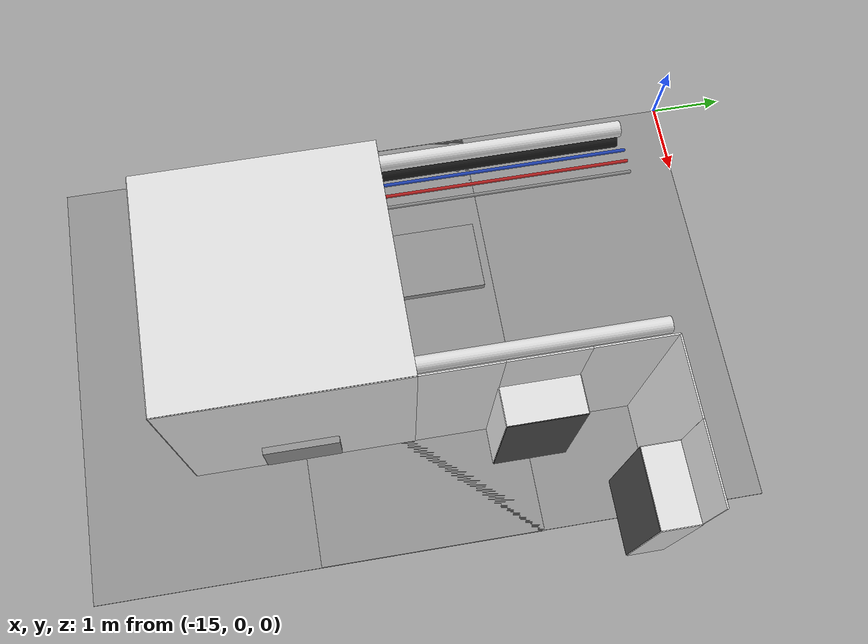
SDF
<sdf version="1.6">
 <world name="default">
  <model name="wall_left_front_left_-3_0_0_1">
   <static>1</static>
   <pose>-10.0 -1.5 1.5 0.0 0.0 3.14</pose>
   <link name="link">
    <collision name="collision"><geometry><box><size>1.0 0.02 3.0</size></box></geometry></collision>
    <visual name="visual">
     <material>
      <script><name>Gazebo/White</name><uri>file://media/materials/scripts/gazebo.material</uri></script>
     </material>
     <geometry><box><size>1.0 0.02 3.0</size></box></geometry>
    </visual>
   </link>
  </model>
  <model name="wall_left_front_up_-3_0_0_1">
   <static>1</static>
   <pose>-9.0 -1.5 2.5 0.0 0.0 3.14</pose>
   <link name="link">
    <collision name="collision"><geometry><box><size>1.0 0.02 1.0</size></box></geometry></collision>
    <visual name="visual">
     <material>
      <script><name>Gazebo/White</name><uri>file://media/materials/scripts/gazebo.material</uri></script>
     </material>
     <geometry><box><size>1.0 0.02 1.0</size></box></geometry>
    </visual>
   </link>
  </model>
  <model name="wall_left_inside_back_-3_0_0_1">
   <static>1</static>
   <pose>-9.0 -2.0 1.0 0.0 0.0 3.14</pose>
   <link name="link">
    <collision name="collision"><geometry><box><size>1 0.02 2</size></box></geometry></collision>
    <visual name="visual">
     <material>
      <script><name>Gazebo/DarkGrey</name><uri>file://media/materials/scripts/gazebo.material</uri></script>
     </material>
     <geometry><box><size>1 0.02 2</size></box></geometry>
    </visual>
   </link>
  </model>
  <model name="wall_left_inside_left_-3_0_0_1">
   <static>1</static>
   <pose>-9.5 -1.75 1.0 0.0 0.0 1.57</pose>
   <link name="link">
    <collision name="collision"><geometry><box><size>0.5 0.02 2</size></box></geometry></collision>
    <visual name="visual">
     <material>
      <script><name>Gazebo/White</name><uri>file://media/materials/scripts/gazebo.material</uri></script>
     </material>
     <geometry><box><size>0.5 0.02 2</size></box></geometry>
    </visual>
   </link>
  </model>
  <model name="wall_left_inside_right_-3_0_0_1">
   <static>1</static>
   <pose>-8.5 -1.75 1.0 0.0 0.0 1.57</pose>
   <link name="link">
    <collision name="collision"><geometry><box><size>0.5 0.02 2</size></box></geometry></collision>
    <visual name="visual">
     <material>
      <script><name>Gazebo/White</name><uri>file://media/materials/scripts/gazebo.material</uri></script>
     </material>
     <geometry><box><size>0.5 0.02 2</size></box></geometry>
    </visual>
   </link>
  </model>
  <model name="wall_left_inside_top_-3_0_0_1">
   <static>1</static>
   <pose>-9.0 -1.75 2.0 1.57 0.0 3.14</pose>
   <link name="link">
    <collision name="collision"><geometry><box><size>1 0.02 0.5</size></box></geometry></collision>
    <visual name="visual">
     <material>
      <script><name>Gazebo/White</name><uri>file://media/materials/scripts/gazebo.material</uri></script>
     </material>
     <geometry><box><size>1 0.02 0.5</size></box></geometry>
    </visual>
   </link>
  </model>
  <model name="ceiling_1_-4_-1_2_1">
   <pose>-12.0 -4.0 2.55 0.0 0.0 3.14</pose>
   <link name="link_1">
    <visual name="visual">
     <geometry><box><size>0.8 1 0.1</size></box></geometry>
     <material>
      <script><uri>file://media/materials/scripts/gazebo.material</uri><name>Gazebo/Grey</name></script>
     </material>
    </visual>
    <collision name="collision"><geometry><box><size>0.8 1 0.1</size></box></geometry></collision>
   </link>
   <static>1</static>
  </model>
  <model name="white_pipe_left_-4_-1_0_1">
   <static>1</static>
   <pose>-12.0 -3.0 2.76 0.0 0.0 3.14</pose>
   <link name="link_0">
    <visual name="visual">
     <pose>-1.3 0 0 1.57 0 0</pose>
     <geometry><cylinder><radius>0.1</radius><length>3.0</length></cylinder></geometry>
     <material>
      <script><uri>file://media/materials/scripts/gazebo.material</uri><name>Gazebo/White</name></script>
     </material>
    </visual>
    <collision name="collision">
     <pose>-1.3 0 0 1.57 0 0</pose>
     <geometry><cylinder><radius>0.1</radius><length>3.0</length></cylinder></geometry>
    </collision>
   </link>
  </model>
  <model name="white_pipe_right_-4_-1_0_1">
   <static>1</static>
   <pose>-12.0 -3.0 2.76 0.0 0.0 3.14</pose>
   <link name="link_0">
    <visual name="visual">
     <pose>1.3 0 0 1.57 0 0</pose>
     <geometry><cylinder><radius>0.1</radius><length>3.0</length></cylinder></geometry>
     <material>
      <script><uri>file://media/materials/scripts/gazebo.material</uri><name>Gazebo/White</name></script>
     </material>
    </visual>
    <collision name="collision">
     <pose>1.3 0 0 1.57 0 0</pose>
     <geometry><cylinder><radius>0.1</radius><length>3.0</length></cylinder></geometry>
    </collision>
   </link>
  </model>
  <model name="black_pipe_right_-4_-1_0_1">
   <static>1</static>
   <pose>-12.0 -3.0 2.76 0.0 0.0 3.14</pose>
   <link name="link_0">
    <visual name="visual">
     <pose>1.3 0 -0.25 1.57 0 0</pose>
     <geometry><cylinder><radius>0.1</radius><length>3.0</length></cylinder></geometry>
     <material>
      <script><uri>file://media/materials/scripts/gazebo.material</uri><name>Gazebo/Black</name></script>
     </material>
    </visual>
    <collision name="collision">
     <pose>1.3 0 -0.25 1.57 0 0</pose>
     <geometry><cylinder><radius>0.1</radius><length>3.0</length></cylinder></geometry>
    </collision>
   </link>
  </model>
  <model name="grey_pipe_right_-4_-1_0_1">
   <static>1</static>
   <pose>-12.0 -3.0 2.76 0.0 0.0 3.14</pose>
   <link name="link_0">
    <visual name="visual">
     <pose>0.7 0 0 1.57 0 0</pose>
     <geometry><cylinder><radius>0.02</radius><length>3.0</length></cylinder></geometry>
     <material>
      <script><uri>file://media/materials/scripts/gazebo.material</uri><name>Gazebo/Grey</name></script>
     </material>
    </visual>
    <collision name="collision">
     <pose>0.7 0 0 1.57 0 0</pose>
     <geometry><cylinder><radius>0.02</radius><length>3.0</length></cylinder></geometry>
    </collision>
   </link>
  </model>
  <model name="red_pipe_right_-4_-1_0_1">
   <static>1</static>
   <pose>-12.0 -3.0 2.76 0.0 0.0 3.14</pose>
   <link name="link_0">
    <visual name="visual">
     <pose>0.85 0 0 1.57 0 0</pose>
     <geometry><cylinder><radius>0.02</radius><length>3.0</length></cylinder></geometry>
     <material>
      <script><uri>file://media/materials/scripts/gazebo.material</uri><name>Gazebo/Red</name></script>
     </material>
    </visual>
    <collision name="collision">
     <pose>0.85 0 0 1.57 0 0</pose>
     <geometry><cylinder><radius>0.02</radius><length>3.0</length></cylinder></geometry>
    </collision>
   </link>
  </model>
  <model name="blue_pipe_right_-4_-1_0_1">
   <static>1</static>
   <pose>-12.0 -3.0 2.76 0.0 0.0 3.14</pose>
   <link name="link_0">
    <visual name="visual">
     <pose>1 0 0 1.57 0 0</pose>
     <geometry><cylinder><radius>0.02</radius><length>3.0</length></cylinder></geometry>
     <material>
      <script><uri>file://media/materials/scripts/gazebo.material</uri><name>Gazebo/Blue</name></script>
     </material>
    </visual>
    <collision name="collision">
     <pose>1 0 0 1.57 0 0</pose>
     <geometry><cylinder><radius>0.02</radius><length>3.0</length></cylinder></geometry>
    </collision>
   </link>
  </model>
  <model name="wall_left_front_left_-4_-1_0_1">
   <static>1</static>
   <pose>-10.5 -4.0 1.5 0.0 0.0 4.71</pose>
   <link name="link">
    <collision name="collision"><geometry><box><size>1.0 0.02 3.0</size></box></geometry></collision>
    <visual name="visual">
     <material>
      <script><name>Gazebo/White</name><uri>file://media/materials/scripts/gazebo.material</uri></script>
     </material>
     <geometry><box><size>1.0 0.02 3.0</size></box></geometry>
    </visual>
   </link>
  </model>
  <model name="wall_left_front_right_-4_-1_0_1">
   <static>1</static>
   <pose>-10.5 -2.0 1.5 0.0 0.0 4.71</pose>
   <link name="link">
    <collision name="collision"><geometry><box><size>1.0 0.02 3.0</size></box></geometry></collision>
    <visual name="visual">
     <material>
      <script><name>Gazebo/White</name><uri>file://media/materials/scripts/gazebo.material</uri></script>
     </material>
     <geometry><box><size>1.0 0.02 3.0</size></box></geometry>
    </visual>
   </link>
  </model>
  <model name="wall_left_front_up_-4_-1_0_1">
   <static>1</static>
   <pose>-10.5 -3.0 2.5 0.0 0.0 4.71</pose>
   <link name="link">
    <collision name="collision"><geometry><box><size>1.0 0.02 1.0</size></box></geometry></collision>
    <visual name="visual">
     <material>
      <script><name>Gazebo/White</name><uri>file://media/materials/scripts/gazebo.material</uri></script>
     </material>
     <geometry><box><size>1.0 0.02 1.0</size></box></geometry>
    </visual>
   </link>
  </model>
  <model name="wall_left_inside_back_-4_-1_0_1">
   <static>1</static>
   <pose>-10.0 -3.0 1.0 0.0 0.0 4.71</pose>
   <link name="link">
    <collision name="collision"><geometry><box><size>1 0.02 2</size></box></geometry></collision>
    <visual name="visual">
     <material>
      <script><name>Gazebo/DarkGrey</name><uri>file://media/materials/scripts/gazebo.material</uri></script>
     </material>
     <geometry><box><size>1 0.02 2</size></box></geometry>
    </visual>
   </link>
  </model>
  <model name="wall_left_inside_left_-4_-1_0_1">
   <static>1</static>
   <pose>-10.25 -3.5 1.0 0.0 0.0 3.14</pose>
   <link name="link">
    <collision name="collision"><geometry><box><size>0.5 0.02 2</size></box></geometry></collision>
    <visual name="visual">
     <material>
      <script><name>Gazebo/White</name><uri>file://media/materials/scripts/gazebo.material</uri></script>
     </material>
     <geometry><box><size>0.5 0.02 2</size></box></geometry>
    </visual>
   </link>
  </model>
  <model name="wall_left_inside_right_-4_-1_0_1">
   <static>1</static>
   <pose>-10.25 -2.5 1.0 0.0 0.0 3.14</pose>
   <link name="link">
    <collision name="collision"><geometry><box><size>0.5 0.02 2</size></box></geometry></collision>
    <visual name="visual">
     <material>
      <script><name>Gazebo/White</name><uri>file://media/materials/scripts/gazebo.material</uri></script>
     </material>
     <geometry><box><size>0.5 0.02 2</size></box></geometry>
    </visual>
   </link>
  </model>
  <model name="wall_left_inside_top_-4_-1_0_1">
   <static>1</static>
   <pose>-10.25 -3.0 2.0 1.57 0.0 4.71</pose>
   <link name="link">
    <collision name="collision"><geometry><box><size>1 0.02 0.5</size></box></geometry></collision>
    <visual name="visual">
     <material>
      <script><name>Gazebo/White</name><uri>file://media/materials/scripts/gazebo.material</uri></script>
     </material>
     <geometry><box><size>1 0.02 0.5</size></box></geometry>
    </visual>
   </link>
  </model>
  <model name="wall_bottom_-4_-1_0_1">
   <static>1</static>
   <pose>-12.0 -3.0 0.0 0.0 0.0 3.14</pose>
   <link name="link">
    <collision name="collision"><geometry><box><size>6.0 6.0 0.02</size></box></geometry></collision>
    <visual name="visual">
     <material>
      <script><name>Gazebo/Grey</name><uri>file://media/materials/scripts/gazebo.material</uri></script>
     </material>
     <geometry><box><size>6.0 6.0 0.02</size></box></geometry>
    </visual>
   </link>
  </model>
  <model name="wall_front_-4_-2_0_2">
   <static>1</static>
   <pose>-12.0 -7.5 1.5 0.0 0.0 3.14</pose>
   <link name="link">
    <collision name="collision"><geometry><box><size>3.0 0.02 3.0</size></box></geometry></collision>
    <visual name="visual">
     <material>
      <script><name>Gazebo/White</name><uri>file://media/materials/scripts/gazebo.material</uri></script>
     </material>
     <geometry><box><size>3.0 0.02 3.0</size></box></geometry>
    </visual>
   </link>
  </model>
  <model name="wall_left_-4_-2_0_2">
   <static>1</static>
   <pose>-10.5 -6.0 1.5 0.0 0.0 4.71</pose>
   <link name="link">
    <collision name="collision"><geometry><box><size>3.0 0.02 3.0</size></box></geometry></collision>
    <visual name="visual">
     <material>
      <script><name>Gazebo/White</name><uri>file://media/materials/scripts/gazebo.material</uri></script>
     </material>
     <geometry><box><size>3.0 0.02 3.0</size></box></geometry>
    </visual>
   </link>
  </model>
  <model name="wall_top_-4_-2_0_2">
   <static>1</static>
   <pose>-12.0 -6.0 3.0 1.57 0.0 3.14</pose>
   <link name="link">
    <collision name="collision"><geometry><box><size>3.0 0.02 3.0</size></box></geometry></collision>
    <visual name="visual">
     <material>
      <script><name>Gazebo/White</name><uri>file://media/materials/scripts/gazebo.material</uri></script>
     </material>
     <geometry><box><size>3.0 0.02 3.0</size></box></geometry>
    </visual>
   </link>
  </model>
  <model name="ceiling_1_-4_-2_0_2">
   <pose>-12.0 -5.0 2.55 0.0 0.0 3.14</pose>
   <link name="link_1">
    <visual name="visual">
     <geometry><box><size>0.8 1 0.1</size></box></geometry>
     <material>
      <script><uri>file://media/materials/scripts/gazebo.material</uri><name>Gazebo/Grey</name></script>
     </material>
    </visual>
    <collision name="collision"><geometry><box><size>0.8 1 0.1</size></box></geometry></collision>
   </link>
   <static>1</static>
  </model>
  <model name="white_pipe_left_-4_-2_0_2">
   <static>1</static>
   <pose>-12.0 -6.0 2.76 0.0 0.0 3.14</pose>
   <link name="link_0">
    <visual name="visual">
     <pose>-1.3 0 0 1.57 0 0</pose>
     <geometry><cylinder><radius>0.1</radius><length>3.0</length></cylinder></geometry>
     <material>
      <script><uri>file://media/materials/scripts/gazebo.material</uri><name>Gazebo/White</name></script>
     </material>
    </visual>
    <collision name="collision">
     <pose>-1.3 0 0 1.57 0 0</pose>
     <geometry><cylinder><radius>0.1</radius><length>3.0</length></cylinder></geometry>
    </collision>
   </link>
  </model>
  <model name="white_pipe_right_-4_-2_0_2">
   <static>1</static>
   <pose>-12.0 -6.0 2.76 0.0 0.0 3.14</pose>
   <link name="link_0">
    <visual name="visual">
     <pose>1.3 0 0 1.57 0 0</pose>
     <geometry><cylinder><radius>0.1</radius><length>3.0</length></cylinder></geometry>
     <material>
      <script><uri>file://media/materials/scripts/gazebo.material</uri><name>Gazebo/White</name></script>
     </material>
    </visual>
    <collision name="collision">
     <pose>1.3 0 0 1.57 0 0</pose>
     <geometry><cylinder><radius>0.1</radius><length>3.0</length></cylinder></geometry>
    </collision>
   </link>
  </model>
  <model name="black_pipe_right_-4_-2_0_2">
   <static>1</static>
   <pose>-12.0 -6.0 2.76 0.0 0.0 3.14</pose>
   <link name="link_0">
    <visual name="visual">
     <pose>1.3 0 -0.25 1.57 0 0</pose>
     <geometry><cylinder><radius>0.1</radius><length>3.0</length></cylinder></geometry>
     <material>
      <script><uri>file://media/materials/scripts/gazebo.material</uri><name>Gazebo/Black</name></script>
     </material>
    </visual>
    <collision name="collision">
     <pose>1.3 0 -0.25 1.57 0 0</pose>
     <geometry><cylinder><radius>0.1</radius><length>3.0</length></cylinder></geometry>
    </collision>
   </link>
  </model>
  <model name="grey_pipe_right_-4_-2_0_2">
   <static>1</static>
   <pose>-12.0 -6.0 2.76 0.0 0.0 3.14</pose>
   <link name="link_0">
    <visual name="visual">
     <pose>0.7 0 0 1.57 0 0</pose>
     <geometry><cylinder><radius>0.02</radius><length>3.0</length></cylinder></geometry>
     <material>
      <script><uri>file://media/materials/scripts/gazebo.material</uri><name>Gazebo/Grey</name></script>
     </material>
    </visual>
    <collision name="collision">
     <pose>0.7 0 0 1.57 0 0</pose>
     <geometry><cylinder><radius>0.02</radius><length>3.0</length></cylinder></geometry>
    </collision>
   </link>
  </model>
  <model name="red_pipe_right_-4_-2_0_2">
   <static>1</static>
   <pose>-12.0 -6.0 2.76 0.0 0.0 3.14</pose>
   <link name="link_0">
    <visual name="visual">
     <pose>0.85 0 0 1.57 0 0</pose>
     <geometry><cylinder><radius>0.02</radius><length>3.0</length></cylinder></geometry>
     <material>
      <script><uri>file://media/materials/scripts/gazebo.material</uri><name>Gazebo/Red</name></script>
     </material>
    </visual>
    <collision name="collision">
     <pose>0.85 0 0 1.57 0 0</pose>
     <geometry><cylinder><radius>0.02</radius><length>3.0</length></cylinder></geometry>
    </collision>
   </link>
  </model>
  <model name="blue_pipe_right_-4_-2_0_2">
   <static>1</static>
   <pose>-12.0 -6.0 2.76 0.0 0.0 3.14</pose>
   <link name="link_0">
    <visual name="visual">
     <pose>1 0 0 1.57 0 0</pose>
     <geometry><cylinder><radius>0.02</radius><length>3.0</length></cylinder></geometry>
     <material>
      <script><uri>file://media/materials/scripts/gazebo.material</uri><name>Gazebo/Blue</name></script>
     </material>
    </visual>
    <collision name="collision">
     <pose>1 0 0 1.57 0 0</pose>
     <geometry><cylinder><radius>0.02</radius><length>3.0</length></cylinder></geometry>
    </collision>
   </link>
  </model>
  <model name="white_pipe_left_1_-4_-2_0_2">
   <static>1</static>
   <pose>-12.0 -6.0 2.76 0.0 0.0 4.71</pose>
   <link name="link_0">
    <visual name="visual">
     <pose>-1.3 0 0 1.57 0 0</pose>
     <geometry><cylinder><radius>0.1</radius><length>3.0</length></cylinder></geometry>
     <material>
      <script><uri>file://media/materials/scripts/gazebo.material</uri><name>Gazebo/White</name></script>
     </material>
    </visual>
    <collision name="collision">
     <pose>-1.3 0 0 1.57 0 0</pose>
     <geometry><cylinder><radius>0.1</radius><length>3.0</length></cylinder></geometry>
    </collision>
   </link>
  </model>
  <model name="white_pipe_right_1_-4_-2_0_2">
   <static>1</static>
   <pose>-12.0 -6.0 2.76 0.0 0.0 4.71</pose>
   <link name="link_0">
    <visual name="visual">
     <pose>1.3 0 0 1.57 0 0</pose>
     <geometry><cylinder><radius>0.1</radius><length>3.0</length></cylinder></geometry>
     <material>
      <script><uri>file://media/materials/scripts/gazebo.material</uri><name>Gazebo/White</name></script>
     </material>
    </visual>
    <collision name="collision">
     <pose>1.3 0 0 1.57 0 0</pose>
     <geometry><cylinder><radius>0.1</radius><length>3.0</length></cylinder></geometry>
    </collision>
   </link>
  </model>
  <model name="black_pipe_right_1_-4_-2_0_2">
   <static>1</static>
   <pose>-12.0 -6.0 2.76 0.0 0.0 4.71</pose>
   <link name="link_0">
    <visual name="visual">
     <pose>1.3 0 -0.25 1.57 0 0</pose>
     <geometry><cylinder><radius>0.1</radius><length>3.0</length></cylinder></geometry>
     <material>
      <script><uri>file://media/materials/scripts/gazebo.material</uri><name>Gazebo/Black</name></script>
     </material>
    </visual>
    <collision name="collision">
     <pose>1.3 0 -0.25 1.57 0 0</pose>
     <geometry><cylinder><radius>0.1</radius><length>3.0</length></cylinder></geometry>
    </collision>
   </link>
  </model>
  <model name="grey_pipe_right_1_-4_-2_0_2">
   <static>1</static>
   <pose>-12.0 -6.0 2.76 0.0 0.0 4.71</pose>
   <link name="link_0">
    <visual name="visual">
     <pose>0.7 0 0 1.57 0 0</pose>
     <geometry><cylinder><radius>0.02</radius><length>3.0</length></cylinder></geometry>
     <material>
      <script><uri>file://media/materials/scripts/gazebo.material</uri><name>Gazebo/Grey</name></script>
     </material>
    </visual>
    <collision name="collision">
     <pose>0.7 0 0 1.57 0 0</pose>
     <geometry><cylinder><radius>0.02</radius><length>3.0</length></cylinder></geometry>
    </collision>
   </link>
  </model>
  <model name="red_pipe_right_1_-4_-2_0_2">
   <static>1</static>
   <pose>-12.0 -6.0 2.76 0.0 0.0 4.71</pose>
   <link name="link_0">
    <visual name="visual">
     <pose>0.85 0 0 1.57 0 0</pose>
     <geometry><cylinder><radius>0.02</radius><length>3.0</length></cylinder></geometry>
     <material>
      <script><uri>file://media/materials/scripts/gazebo.material</uri><name>Gazebo/Red</name></script>
     </material>
    </visual>
    <collision name="collision">
     <pose>0.85 0 0 1.57 0 0</pose>
     <geometry><cylinder><radius>0.02</radius><length>3.0</length></cylinder></geometry>
    </collision>
   </link>
  </model>
  <model name="blue_pipe_right_1_-4_-2_0_2">
   <static>1</static>
   <pose>-12.0 -6.0 2.76 0.0 0.0 4.71</pose>
   <link name="link_0">
    <visual name="visual">
     <pose>1 0 0 1.57 0 0</pose>
     <geometry><cylinder><radius>0.02</radius><length>3.0</length></cylinder></geometry>
     <material>
      <script><uri>file://media/materials/scripts/gazebo.material</uri><name>Gazebo/Blue</name></script>
     </material>
    </visual>
    <collision name="collision">
     <pose>1 0 0 1.57 0 0</pose>
     <geometry><cylinder><radius>0.02</radius><length>3.0</length></cylinder></geometry>
    </collision>
   </link>
  </model>
  <model name="wall_bottom_-4_-2_0_2">
   <static>1</static>
   <pose>-12.0 -6.0 0.0 0.0 0.0 3.14</pose>
   <link name="link">
    <collision name="collision"><geometry><box><size>6.0 6.0 0.02</size></box></geometry></collision>
    <visual name="visual">
     <material>
      <script><name>Gazebo/Grey</name><uri>file://media/materials/scripts/gazebo.material</uri></script>
     </material>
     <geometry><box><size>6.0 6.0 0.02</size></box></geometry>
    </visual>
   </link>
  </model>
  <model name="panel_-4_-2_0_2">
   <static>1</static>
   <pose>-10.5 -6.0 0.66 0.0 0.0 3.14</pose>
   <link name="link">
    <collision name="collision"><geometry><box><size>0.2 1 0.6</size></box></geometry></collision>
    <visual name="visual">
     <material>
      <script><name>Gazebo/Grey</name><uri>file://media/materials/scripts/gazebo.material</uri></script>
     </material>
     <geometry><box><size>0.2 1 0.6</size></box></geometry>
    </visual>
   </link>
  </model>
  <model name="panel_-4_-2_1_2">
   <static>1</static>
   <pose>-12.0 -7.5 1.95 0.0 0.0 4.71</pose>
   <link name="link">
    <collision name="collision"><geometry><box><size>0.04 0.7 1</size></box></geometry></collision>
    <visual name="visual">
     <material>
      <script><name>Gazebo/Blue</name><uri>file://media/materials/scripts/gazebo.material</uri></script>
     </material>
     <geometry><box><size>0.04 0.7 1</size></box></geometry>
    </visual>
   </link>
  </model>
 </world>
</sdf>
